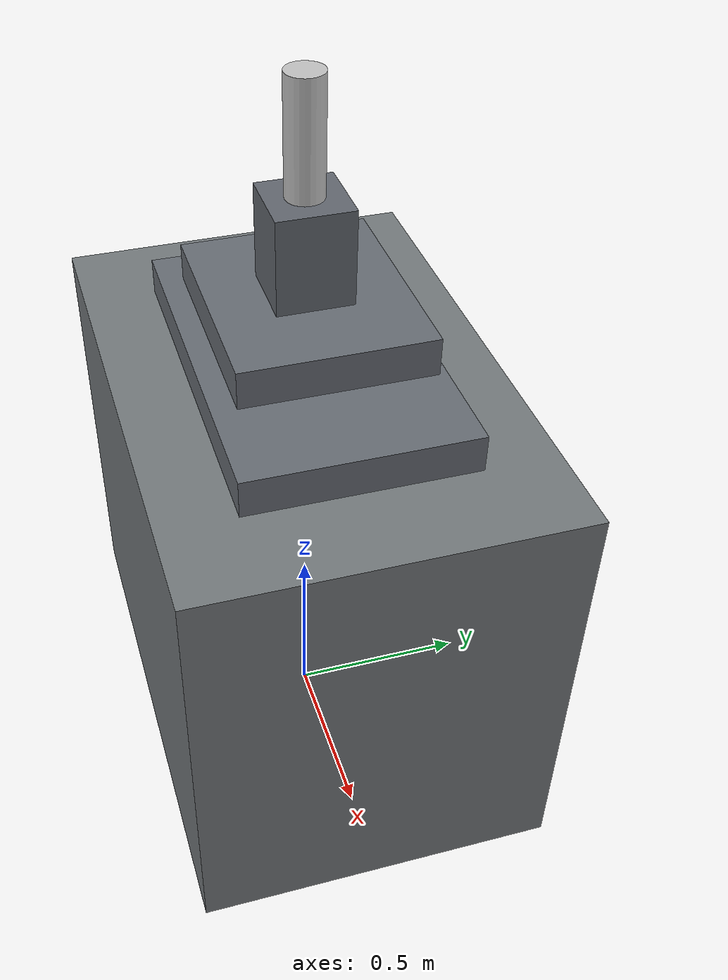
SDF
<?xml version="1.0" ?>
<sdf version="1.9">
  <model name="cnc_machine">
    <static>false</static>

    <!-- Base Frame  (1.5 x 1.0 x 1.2 m)                           -->
    <link name="base_link">
      <pose>0 0 0.6 0 0 0</pose>
      <inertial>
        <mass>500.0</mass>
        <inertia>
          <ixx>73.33</ixx>
          <ixy>0</ixy>
          <ixz>0</ixz>
          <iyy>61.88</iyy>
          <iyz>0</iyz>
          <izz>27.08</izz>
        </inertia>
      </inertial>
      <collision name="base_collision">
        <geometry>
          <box>
            <size>1.5 1.0 1.2</size>
          </box>
        </geometry>
      </collision>
      <visual name="base_visual">
        <geometry>
          <box>
            <size>1.5 1.0 1.2</size>
          </box>
        </geometry>
        <material>
          <ambient>0.35 0.37 0.38 1.0</ambient>
          <diffuse>0.45 0.47 0.48 1.0</diffuse>
          <specular>0.25 0.25 0.25 1.0</specular>
        </material>
      </visual>
    </link>

    <!-- X-Axis Carriage                                            -->
    <link name="x_carriage">
      <pose>0 0 1.25 0 0 0</pose>
      <inertial>
        <mass>30.0</mass>
        <inertia>
          <ixx>0.55</ixx>
          <ixy>0</ixy>
          <ixz>0</ixz>
          <iyy>2.53</iyy>
          <iyz>0</iyz>
          <izz>2.28</izz>
        </inertia>
      </inertial>
      <collision name="x_carriage_collision">
        <geometry>
          <box>
            <size>1.0 0.6 0.1</size>
          </box>
        </geometry>
      </collision>
      <visual name="x_carriage_visual">
        <geometry>
          <box>
            <size>1.0 0.6 0.1</size>
          </box>
        </geometry>
        <material>
          <ambient>0.3 0.32 0.35 1.0</ambient>
          <diffuse>0.4 0.42 0.45 1.0</diffuse>
          <specular>0.3 0.3 0.3 1.0</specular>
        </material>
      </visual>
    </link>

    <joint name="x_axis_joint" type="prismatic">
      <parent>base_link</parent>
      <child>x_carriage</child>
      <axis>
        <xyz>1 0 0</xyz>
        <limit>
          <lower>-0.5</lower>
          <upper>0.5</upper>
          <effort>500</effort>
          <velocity>0.5</velocity>
        </limit>
        <dynamics>
          <damping>50.0</damping>
          <friction>5.0</friction>
        </dynamics>
      </axis>
    </joint>

    <!-- Y-Axis Carriage                                            -->
    <link name="y_carriage">
      <pose>0 0 1.40 0 0 0</pose>
      <inertial>
        <mass>20.0</mass>
        <inertia>
          <ixx>0.27</ixx>
          <ixy>0</ixy>
          <ixz>0</ixz>
          <iyy>1.07</iyy>
          <iyz>0</iyz>
          <izz>1.0</izz>
        </inertia>
      </inertial>
      <collision name="y_carriage_collision">
        <geometry>
          <box>
            <size>0.6 0.5 0.1</size>
          </box>
        </geometry>
      </collision>
      <visual name="y_carriage_visual">
        <geometry>
          <box>
            <size>0.6 0.5 0.1</size>
          </box>
        </geometry>
        <material>
          <ambient>0.3 0.32 0.35 1.0</ambient>
          <diffuse>0.4 0.42 0.45 1.0</diffuse>
          <specular>0.3 0.3 0.3 1.0</specular>
        </material>
      </visual>
    </link>

    <joint name="y_axis_joint" type="prismatic">
      <parent>x_carriage</parent>
      <child>y_carriage</child>
      <axis>
        <xyz>0 1 0</xyz>
        <limit>
          <lower>-0.3</lower>
          <upper>0.3</upper>
          <effort>400</effort>
          <velocity>0.5</velocity>
        </limit>
        <dynamics>
          <damping>40.0</damping>
          <friction>4.0</friction>
        </dynamics>
      </axis>
    </joint>

    <!-- Z-Axis Carriage                                            -->
    <link name="z_carriage">
      <pose>0 0 1.55 0 0 0</pose>
      <inertial>
        <mass>15.0</mass>
        <inertia>
          <ixx>0.35</ixx>
          <ixy>0</ixy>
          <ixz>0</ixz>
          <iyy>0.35</iyy>
          <iyz>0</iyz>
          <izz>0.08</izz>
        </inertia>
      </inertial>
      <collision name="z_carriage_collision">
        <geometry>
          <box>
            <size>0.2 0.2 0.3</size>
          </box>
        </geometry>
      </collision>
      <visual name="z_carriage_visual">
        <geometry>
          <box>
            <size>0.2 0.2 0.3</size>
          </box>
        </geometry>
        <material>
          <ambient>0.28 0.30 0.33 1.0</ambient>
          <diffuse>0.38 0.40 0.43 1.0</diffuse>
          <specular>0.3 0.3 0.3 1.0</specular>
        </material>
      </visual>
    </link>

    <joint name="z_axis_joint" type="prismatic">
      <parent>y_carriage</parent>
      <child>z_carriage</child>
      <axis>
        <xyz>0 0 1</xyz>
        <limit>
          <lower>-0.3</lower>
          <upper>0.3</upper>
          <effort>300</effort>
          <velocity>0.3</velocity>
        </limit>
        <dynamics>
          <damping>30.0</damping>
          <friction>3.0</friction>
        </dynamics>
      </axis>
    </joint>

    <!-- Spindle Assembly  (cylinder on top of Z carriage)          -->
    <link name="spindle">
      <pose>0 0 1.85 0 0 0</pose>
      <inertial>
        <mass>8.0</mass>
        <inertia>
          <ixx>0.087</ixx>
          <ixy>0</ixy>
          <ixz>0</ixz>
          <iyy>0.087</iyy>
          <iyz>0</iyz>
          <izz>0.01</izz>
        </inertia>
      </inertial>
      <collision name="spindle_collision">
        <geometry>
          <cylinder>
            <radius>0.05</radius>
            <length>0.3</length>
          </cylinder>
        </geometry>
      </collision>
      <visual name="spindle_visual">
        <geometry>
          <cylinder>
            <radius>0.05</radius>
            <length>0.3</length>
          </cylinder>
        </geometry>
        <material>
          <ambient>0.6 0.6 0.6 1.0</ambient>
          <diffuse>0.75 0.75 0.75 1.0</diffuse>
          <specular>0.8 0.8 0.8 1.0</specular>
        </material>
      </visual>
    </link>

    <joint name="spindle_joint" type="revolute">
      <parent>z_carriage</parent>
      <child>spindle</child>
      <axis>
        <xyz>0 0 1</xyz>
        <limit>
          <lower>-1e16</lower>
          <upper>1e16</upper>
          <effort>20</effort>
          <velocity>628.32</velocity>  <!-- ~6000 RPM -->
        </limit>
        <dynamics>
          <damping>0.01</damping>
          <friction>0.005</friction>
        </dynamics>
      </axis>
    </joint>

    <!-- Joint state publisher plugin -->
    <plugin filename="gz-sim-joint-state-publisher-system"
            name="gz::sim::systems::JointStatePublisher">
      <joint_name>x_axis_joint</joint_name>
      <joint_name>y_axis_joint</joint_name>
      <joint_name>z_axis_joint</joint_name>
      <joint_name>spindle_joint</joint_name>
    </plugin>

  </model>
</sdf>
